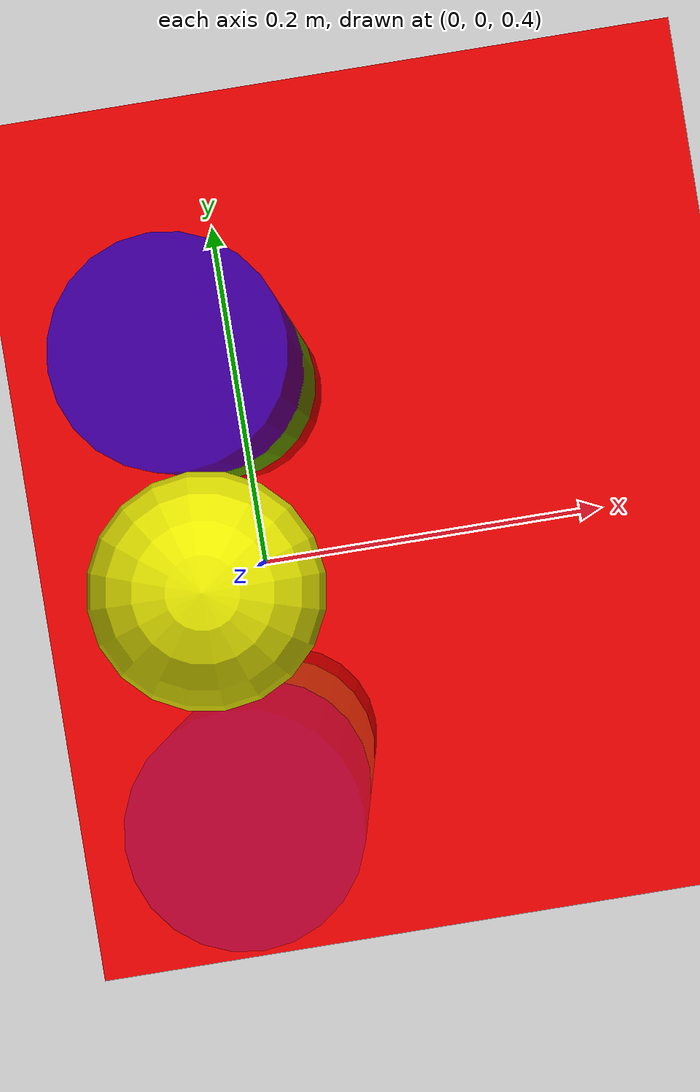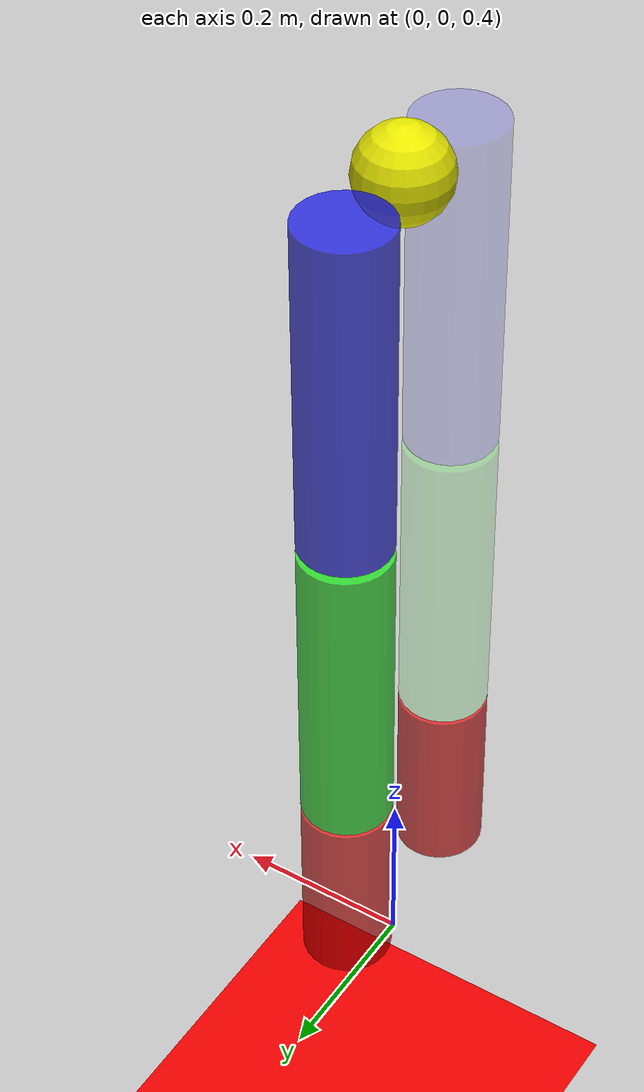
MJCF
<mujoco>

	<visual>
			<headlight ambient="0.25 0.25 0.25"/>
	</visual>

	<option timestep="0.001" integrator="RK4" gravity="0 0 0">
		<flag sensornoise="disable" contact="enable" energy="enable"/>
	</option>

	<default>
		<default class="body">
			<geom type="capsule" condim="1" friction=".7" solimp=".9 .99 .003" solref=".015 1"/>
			<default class="foot">
        		<geom size=".027"/>
        		<default class="foot1">
          			<geom fromto="-.07 -.01 0 .14 -.03 0"/>
        		</default>
        		<default class="foot2">
          			<geom fromto="-.07 .01 0 .14  .03 0"/>
        		</default>
			</default>
		</default>
	</default>

	<worldbody>
		<geom type="plane" size="1 1 0.1" rgba=".9 0 0 1"/>

		<body name="trunk" pos="0 0 1.45" euler="0 0 0">
			<joint name="body_x" type="slide" pos="0 0 0.21" axis = "1 0 0" />
			<joint name="body_z" type="slide" pos="0 0 0.21" axis = "0 0 1" />
            <geom type="sphere" size=".05" rgba=".9 .9 0 1" mass="5"/>
			<body name="thigh1" pos="0 0.1 -0.185" euler="0 0 0">
				<joint name="hip1" type="hinge" axis = "0 1 0" pos="0 0 0.2"/>
				<geom type="cylinder" size="0.05 0.19" rgba="0 0 .9 0.7" mass="3"/>
				<body name="shank1" pos="0 0 -0.38" euler="0 0 0">
					<joint name="knee1" type="hinge" axis = "0 1 0" pos="0 0 0.185"/>
					<geom type="cylinder" size="0.05 0.18" rgba="0 .9 0 0.7" mass="2.5"/>
					<body name="foot1" pos="0 0 -0.295" euler="0 0 0">
						<joint name="ankle1" type="hinge" axis = "0 1 0" pos="0 0 0.12"/>
						<geom type="cylinder" size="0.05 0.11" rgba=".9 0 0 0.7" mass="1"/>
					</body>
				</body>
			</body>
			<body name="thigh2" pos="0 -0.1 -0.185" euler="0 0 0">
				<joint name="hip2" type="hinge" axis = "0 1 0" pos="0 0 0.2"/>
				<geom type="cylinder" size="0.05 0.19" rgba="0 0 .9 0.2" mass="3"/>
				<body name="shank2" pos="0 0 -0.38" euler="0 0 0">
					<joint name="knee2" type="hinge" axis = "0 1 0" pos="0 0 0.185"/>
					<geom type="cylinder" size="0.05 0.18" rgba="0 .9 0 0.2" mass="2.5"/>
					<body name="foot2" pos="0 0 -0.295" euler="0 0 0">
						<joint name="ankle2" type="hinge" axis = "0 1 0" pos="0 0 0.12"/>
						<geom type="cylinder" size="0.05 0.11" rgba=".9 0 0 0.7" mass="1"/>
					</body>
				</body>
			</body>
        </body>

	</worldbody>
    <actuator>
		<position name="position_servo_body_x" joint="body_x" kp="1000"/>
		<velocity name="velocity_servo_body_x" joint="body_x" kv="100"/>
        <position name="position_servo_body_z" joint="body_z" kp="1000"/>
		<velocity name="velocity_servo_body_z" joint="body_z" kv="100"/>
		<motor joint="hip1" name="torque_hip1" gear="1" forcelimited="true" forcerange="-100 100"/>
		<motor joint="knee1" name="torque_knee1" gear="1" forcelimited="true" forcerange="-100 100"/>
		<motor joint="ankle1" name="torque_ankle1" gear="1" forcelimited="true" forcerange="-100 100"/>
		<motor joint="hip2" name="torque_hip2" gear="1" forcelimited="true" forcerange="-1 1"/>
		<motor joint="knee2" name="torque_knee2" gear="1" forcelimited="true" forcerange="-1 1"/>
		<motor joint="ankle2" name="torque_ankle2" gear="1"  forcelimited="true" forcerange="-1 1"/>
	</actuator>
	<sensor>
    	<jointactuatorfrc name="frcsensor_hip1" joint="hip1"/>
    	<jointactuatorfrc name="frcsensor_knee1" joint="knee1"/>
		<jointactuatorfrc name="frcsensor_ankle1" joint="ankle1"/>
	</sensor>

</mujoco>
